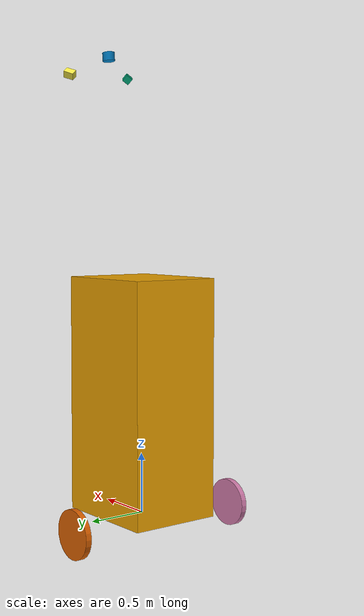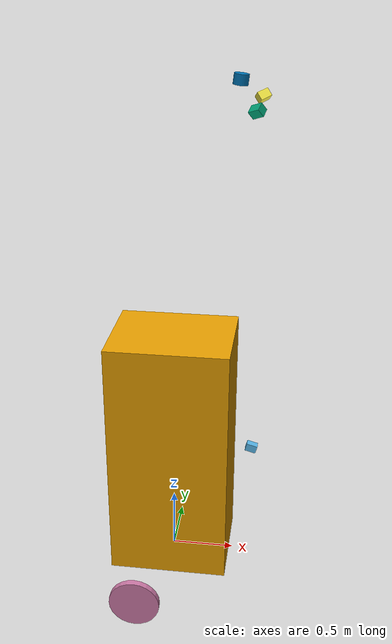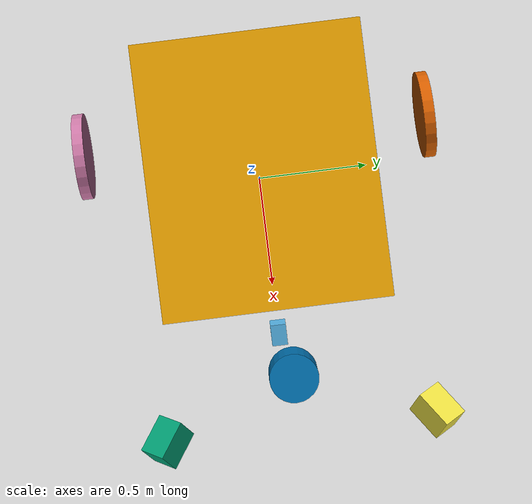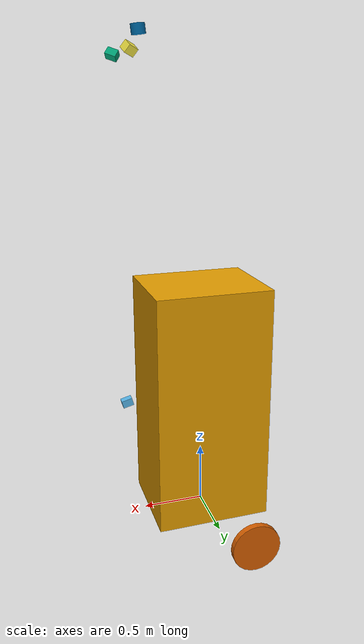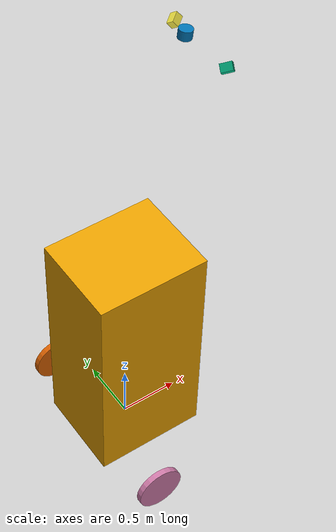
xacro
<?xml version="1.0"?>

<robot name="robot1" xmlns:xacro="http://www.ros.org/wiki/xacro">
	<link name="base">
		<visual>
			<origin xyz = "0 0 0.99"/>
			<geometry>
				<box size="0.94 0.78 1.98"/>
			</geometry>
		</visual>
		<collision>
			<geometry>
				<box size="0.94 0.78 1.98"/>
			</geometry>
		</collision>
	</link>
	<link name="laser_vert_bottom">
		<visual>
			<origin xyz="0.3158 -0.0021 0.5100" rpy="3.1355 -1.3045 0.0025"/>
			<geometry>
				<box size="0.062 0.062 0.087"/>
			</geometry>
		</visual>
	</link>
	<link name="laser_vert_top_right">
		<visual>
			<origin xyz = "0.2978 -0.1450 1.8451" rpy = "-1.1760 0.6313 -1.9377"/>
			<geometry>
				<box size="0.062 0.062 0.087"/>
			</geometry>
		</visual>
	</link>
	<link name="laser_vert_top_left">
		<visual>
			<origin xyz = "0.2997 0.1531 1.8443" rpy = "1.1780 0.6198 1.9560"/>
			<geometry>
				<box size = "0.062 0.062 0.087"/>
			</geometry>
		</visual>
	</link>
	<link name="laser_horiz">
		<visual>
			<origin xyz = "0.2325 0.0001 1.9201" rpy = "-0.0012 0.1146 -0.0015"/>
			<geometry>
				<cylinder radius = "0.052" length = "0.072"/>
			</geometry>
		</visual>
		<collision>
			<origin xyz = "0.2325 0.0001 1.9201" rpy = "-0.0012 0.1146 -0.0015"/>
			<geometry>
				<cylinder radius = "0.052" length = "0.072"/>
			</geometry>
		</collision>
	</link>

	<joint name="base_laser_vert_bottom_joint" type="fixed">
		<parent link="base"/>
		<child link="laser_vert_bottom"/>
		<origin xyz="0.3158 -0.0021 0.5100"/>
	</joint>
	<joint name="base_laser_vert_top_right_joint" type="fixed">
		<parent link="base"/>
		<child link="laser_vert_top_right"/>
		<origin xyz="0.2978 -0.1450 1.8451"/>
	</joint>
	<joint name="base_laser_vert_top_left_joint" type="fixed">
		<parent link="base"/>
		<child link="laser_vert_top_left"/>
		<origin xyz="0.2997 0.1531 1.8443"/>
	</joint>
	<joint name="base_laser_horiz_joint" type="fixed">
		<parent link="base"/>
		<child link="laser_horiz"/>
		<origin xyz="0.2325 0.001 1.9201"/>
	</joint>

	<xacro:macro name="xacro_name" params="suffix reflect shift size">
		<link name="wheel_${suffix}">
			<visual>
				<origin xyz="${shift} ${reflect * 0.4} 0" rpy="-1.5707 0 0"/>
				<geometry>
					<cylinder radius="${0.2+size}" length="0.05"/>
				</geometry>
			</visual>
			<collision>
				<origin xyz="${shift} ${0.4*reflect} 0" rpy="-1.5707 0 0"/>
				<geometry>
					<cylinder radius="${0.2+size}" length="0.05"/>
				</geometry>
			</collision>
		</link>
		<joint name="base_wheel_${suffix}_joint" type="continuous">
			<parent link="base"/>
			<child link="wheel_${suffix}"/>
			<origin xyz="${shift} ${reflect * 0.4} 0"/>
			<axis xyz="0 1 0"/>
		</joint>
	</xacro:macro>
	<xacro:xacro_name suffix="left" reflect="1" shift="-0.1" size="0"/>
	<xacro:xacro_name suffix="right" reflect="-1" shift="-0.1" size="0"/>
	<xacro:xacro_name suffix="center" reflect="0" shift="0.1" size="-0.05"/>
</robot>
